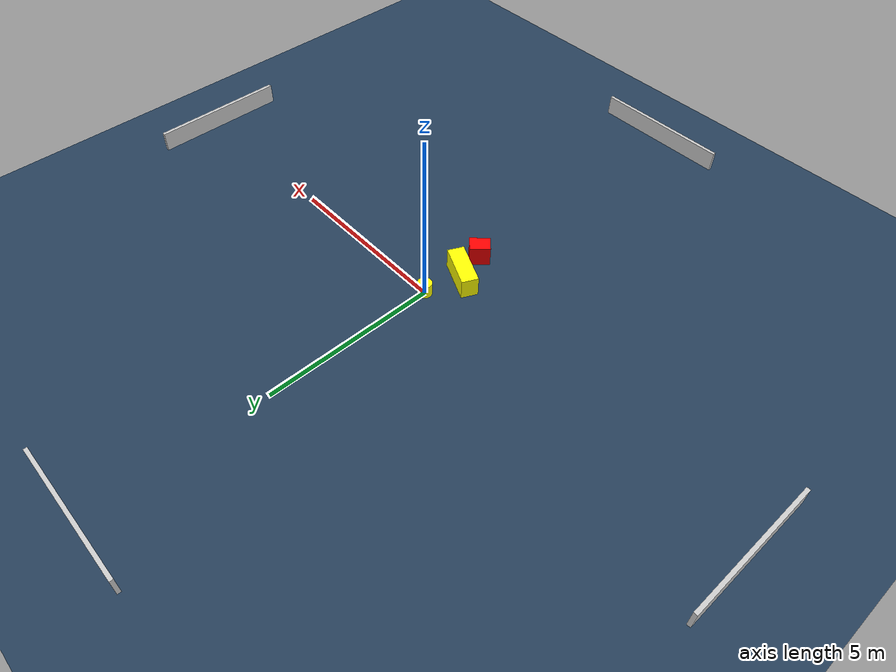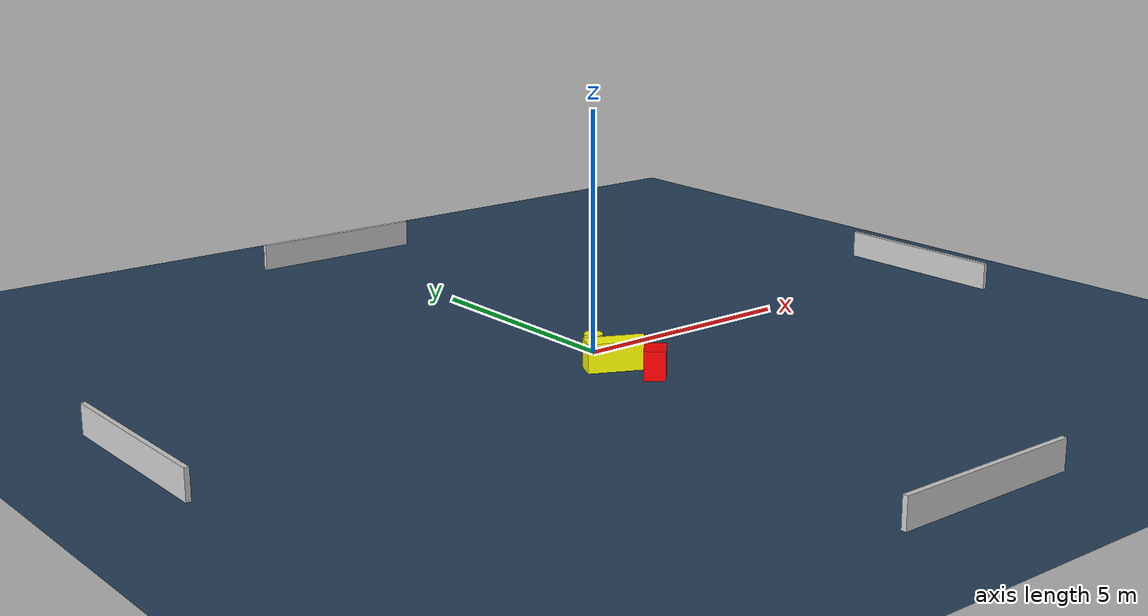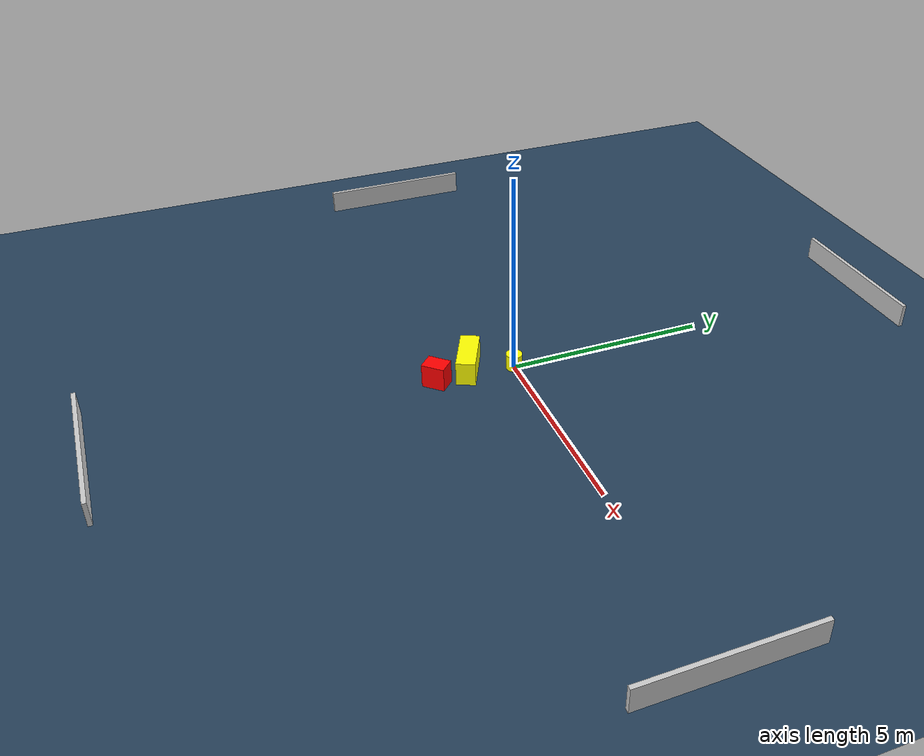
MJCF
<?xml version="1.0" ?>
<mujoco model="generated_environment">
  <option timestep="0.01" integrator="RK4" cone="elliptic"/>
  <default>
    <geom density="1"/>
  </default>
  <asset>
    <texture builtin="gradient" height="3072" name="skybox" rgb1="0.3 0.5 0.7" rgb2="0 0 0" type="skybox" width="512"/>
    <texture builtin="checker" height="300" name="groundplane" rgb1="0.2 0.3 0.4" rgb2="0.1 0.2 0.3" type="2d" width="300"/>
    <material name="groundplane" reflectance="0.2" texrepeat="5 5" texture="groundplane"/>
  </asset>
  <worldbody>
    <light dir="0 0 -1" directional="true" pos="0 0 1.5"/>
    <geom condim="3" friction="0.5 0.005 0.001" material="groundplane" name="floor" pos="0 0 0" size="0 0 0.05" type="plane"/>
    <body name="walls">
      <geom name="wall_1" condim="4" pos="-10.0 0.0 0.3" rgba="0.800000011920929 0.800000011920929 0.800000011920929 1.0" size="0.05 2.0 0.3" type="box"/>
      <geom name="wall_2" condim="4" pos="10.0 0.0 0.3" rgba="0.800000011920929 0.800000011920929 0.800000011920929 1.0" size="0.05 2.0 0.3" type="box"/>
      <geom name="wall_3" condim="4" pos="0.0 -10.0 0.3" rgba="0.800000011920929 0.800000011920929 0.800000011920929 1.0" size="2.0 0.05 0.3" type="box"/>
      <geom name="wall_4" condim="4" pos="0.0 10.0 0.3" rgba="0.800000011920929 0.800000011920929 0.800000011920929 1.0" size="2.0 0.05 0.3" type="box"/>
    </body>
    <body name="robot">
      <joint name="joint_x" type="slide" pos="0 0 0" axis="1 0 0"/>
      <joint name="joint_y" type="slide" pos="0 0 0" axis="0 1 0"/>
      <geom name="robot" type="cylinder" pos="0.0 0.0 0.2" size="0.2 0.2 0.0" mass="5.0" friction="1.0 0.005 0.0001" condim="4" rgba="1.0 1.0 0.0 1.0"/>
    </body>
    <body name="obstacle_1_movable">
      <geom name="obstacle_1_movable" condim="4" pos="-0.307648113676104 -1.07682225656009 0.3" euler="0 0 244.76440277658688" friction="0.0 0.005 0.001" rgba="1.0 1.0 0.0 1.0" size="0.23705332770480736 0.6248178568391828 0.3" type="box" mass="0.1"/>
      <joint type="free"/>
    </body>
    <body name="obstacle_2_static">
      <geom name="obstacle_2_static" condim="4" pos="-0.05110784326481339 -1.9673657732174457 0.3" euler="0 0 136.90521239390404" friction="0.0 0.005 0.001" rgba="1.0 0.0 0.0 1.0" size="0.21992900598148266 0.2881215394462246 0.3" type="box"/>
    </body>
  </worldbody>
  <actuator>
    <motor name="actuator_x" joint="joint_x" gear="1" ctrlrange="-1 1"/>
    <motor name="actuator_y" joint="joint_y" gear="1" ctrlrange="-1 1"/>
  </actuator>
</mujoco>
